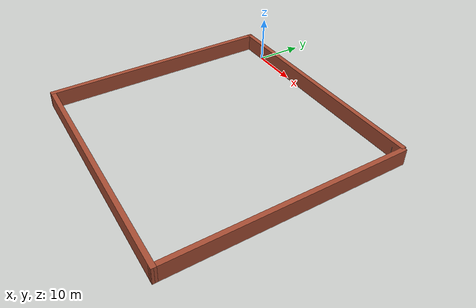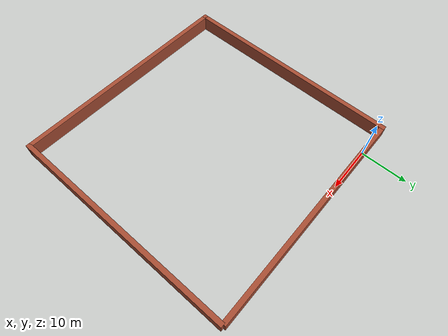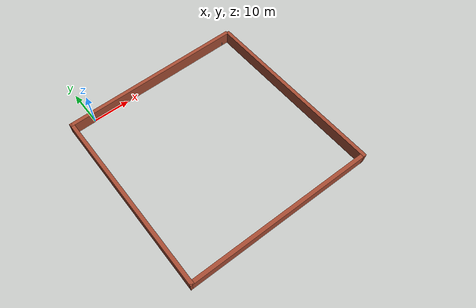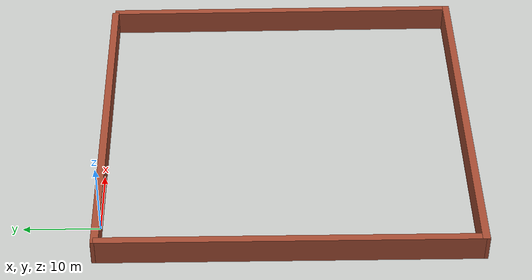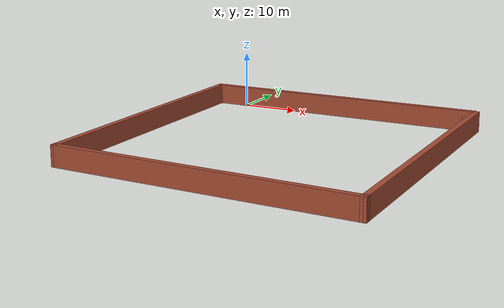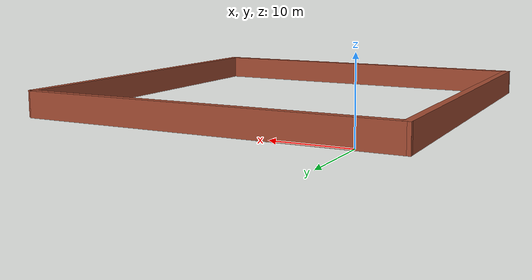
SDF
<?xml version='1.0'?>
<sdf version='1.6'>
  <model name='Map1'>
    <pose frame=''>19.0102 -25.1155 0 0 -0 0</pose>
    <link name='Wall_0'>
      <collision name='Wall_0_Collision'>
        <geometry>
          <box>
            <size>50.3123 1 3.5</size>
          </box>
        </geometry>
        <pose frame=''>0 0 1.75 0 -0 0</pose>
      </collision>
      <visual name='Wall_0_Visual'>
        <pose frame=''>0 0 1.75 0 -0 0</pose>
        <geometry>
          <box>
            <size>50.3123 1 3.5</size>
          </box>
        </geometry>
        <material>
          <script>
            <uri>file://media/materials/scripts/gazebo.material</uri>
            <name>Gazebo/Bricks</name>
          </script>
          <ambient>1 1 1 1</ambient>
        </material>
        <meta>
          <layer>0</layer>
        </meta>
      </visual>
      <pose frame=''>-0.10507 25.348 0 0 -0 3.14015</pose>
    </link>
    <link name='Wall_1'>
      <collision name='Wall_1_Collision'>
        <geometry>
          <box>
            <size>49.9997 1 3.5</size>
          </box>
        </geometry>
        <pose frame=''>0 0 1.75 0 -0 0</pose>
      </collision>
      <visual name='Wall_1_Visual'>
        <pose frame=''>0 0 1.75 0 -0 0</pose>
        <geometry>
          <box>
            <size>49.9997 1 3.5</size>
          </box>
        </geometry>
        <material>
          <script>
            <uri>file://media/materials/scripts/gazebo.material</uri>
            <name>Gazebo/Bricks</name>
          </script>
          <ambient>1 1 1 1</ambient>
        </material>
        <meta>
          <layer>0</layer>
        </meta>
      </visual>
      <pose frame=''>-24.9682 0.884462 0 0 -0 -1.57925</pose>
    </link>
    <link name='Wall_2'>
      <collision name='Wall_2_Collision'>
        <geometry>
          <box>
            <size>51.3516 1 3.5</size>
          </box>
        </geometry>
        <pose frame=''>0 0 1.75 0 -0 0</pose>
      </collision>
      <visual name='Wall_2_Visual'>
        <pose frame=''>0 0 1.75 0 -0 0</pose>
        <geometry>
          <box>
            <size>51.3516 1 3.5</size>
          </box>
        </geometry>
        <material>
          <script>
            <uri>file://media/materials/scripts/gazebo.material</uri>
            <name>Gazebo/Bricks</name>
          </script>
          <ambient>1 1 1 1</ambient>
        </material>
        <meta>
          <layer>0</layer>
        </meta>
      </visual>
      <pose frame=''>-0.014669 -24.4925 0 0 -0 -0.034882</pose>
    </link>
    <link name='Wall_3'>
      <collision name='Wall_3_Collision'>
        <geometry>
          <box>
            <size>51.2494 1 3.5</size>
          </box>
        </geometry>
        <pose frame=''>0 0 1.75 0 -0 0</pose>
      </collision>
      <visual name='Wall_3_Visual'>
        <pose frame=''>0 0 1.75 0 -0 0</pose>
        <geometry>
          <box>
            <size>51.2494 1 3.5</size>
          </box>
        </geometry>
        <material>
          <script>
            <uri>file://media/materials/scripts/gazebo.material</uri>
            <name>Gazebo/Bricks</name>
          </script>
          <ambient>1 1 1 1</ambient>
        </material>
        <meta>
          <layer>0</layer>
        </meta>
      </visual>
      <pose frame=''>25.1688 -0.245831 0 0 -0 1.56988</pose>
    </link>
    <link name='Wall_5'>
      <collision name='Wall_5_Collision'>
        <geometry>
          <box>
            <size>0.258185 0.15 2.5</size>
          </box>
        </geometry>
        <pose frame=''>0 0 1.25 0 -0 0</pose>
      </collision>
      <visual name='Wall_5_Visual'>
        <pose frame=''>0 0 1.25 0 -0 0</pose>
        <geometry>
          <box>
            <size>0.258185 0.15 2.5</size>
          </box>
        </geometry>
        <material>
          <script>
            <uri>file://media/materials/scripts/gazebo.material</uri>
            <name>Gazebo/Grey</name>
          </script>
          <ambient>1 1 1 1</ambient>
        </material>
        <meta>
          <layer>0</layer>
        </meta>
      </visual>
      <pose frame=''>24.6548 25.3607 0 0 -0 -2.03948</pose>
    </link>
    <link name='Wall_6'>
      <collision name='Wall_6_Collision'>
        <geometry>
          <box>
            <size>1.96762 0.15 2.5</size>
          </box>
        </geometry>
        <pose frame=''>0 0 1.25 0 -0 0</pose>
      </collision>
      <visual name='Wall_6_Visual'>
        <pose frame=''>0 0 1.25 0 -0 0</pose>
        <geometry>
          <box>
            <size>1.96762 0.15 2.5</size>
          </box>
        </geometry>
        <material>
          <script>
            <uri>file://media/materials/scripts/gazebo.material</uri>
            <name>Gazebo/Grey</name>
          </script>
          <ambient>1 1 1 1</ambient>
        </material>
        <meta>
          <layer>0</layer>
        </meta>
      </visual>
      <pose frame=''>23.7468 25.0998 0 0 -0 -2.90543</pose>
    </link>
    <static>1</static>
  </model>
</sdf>
